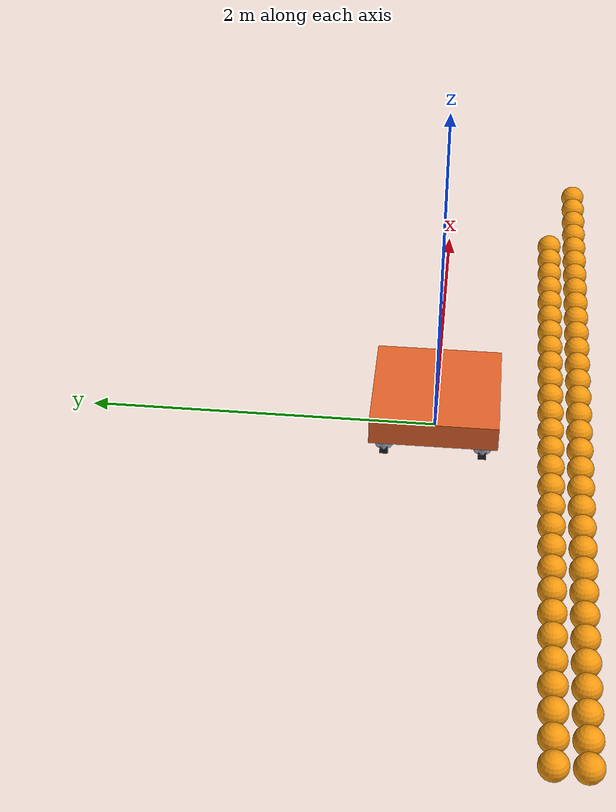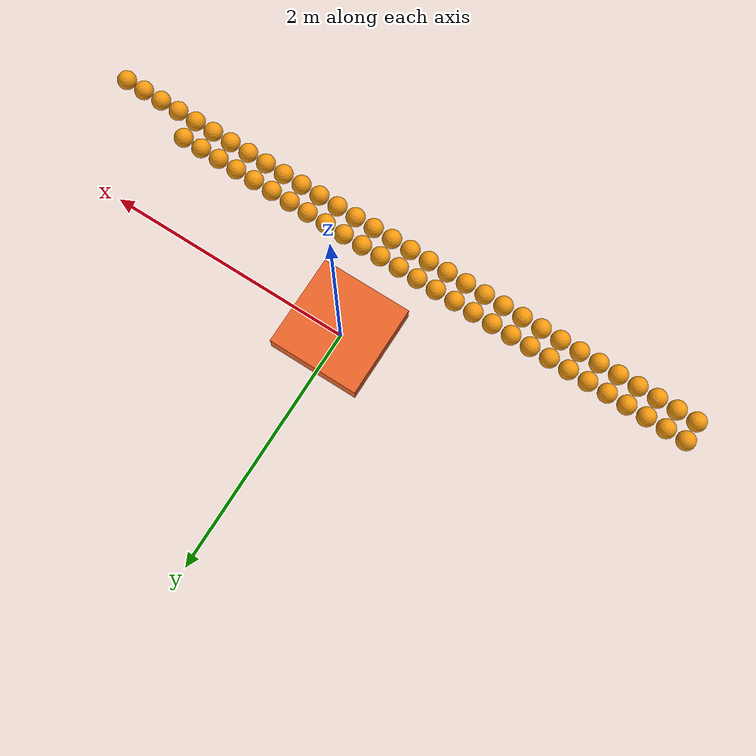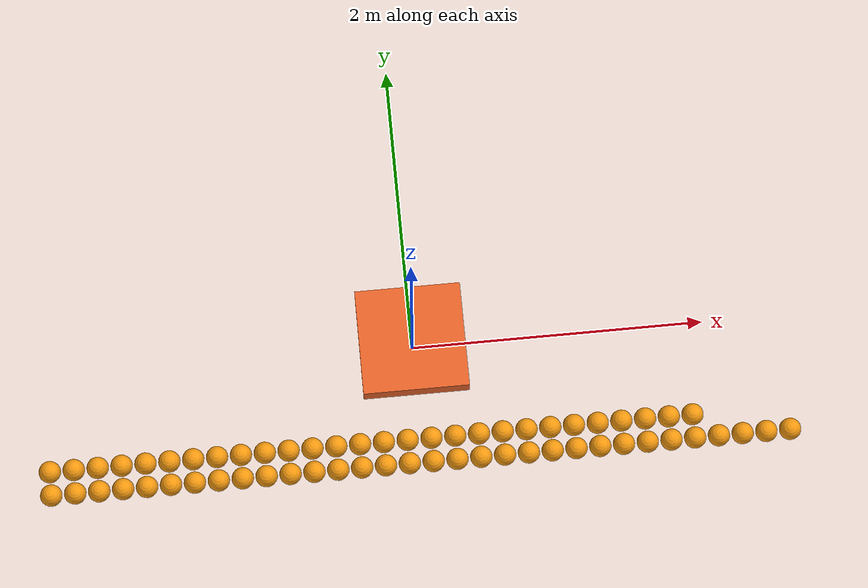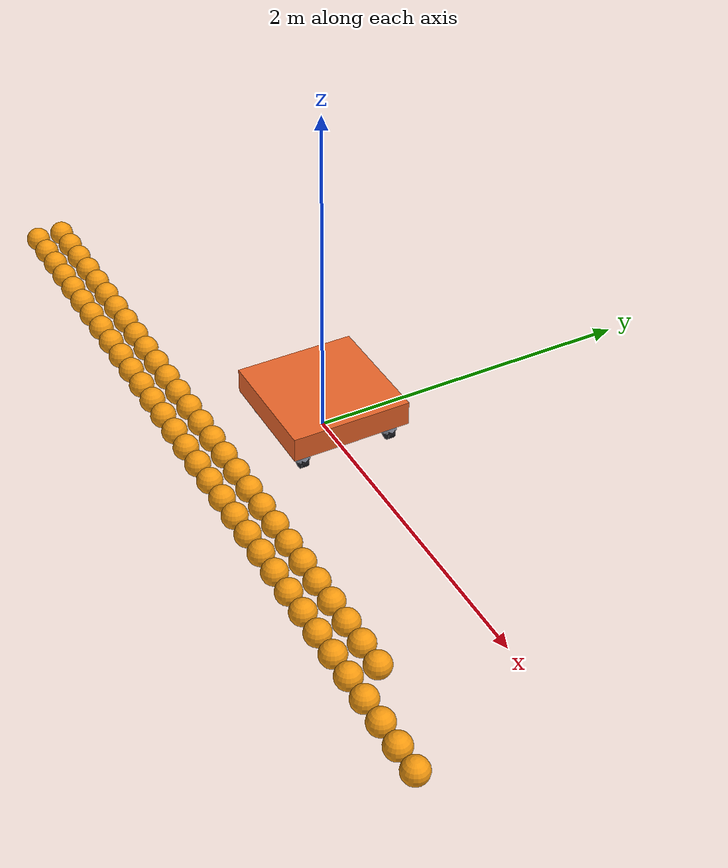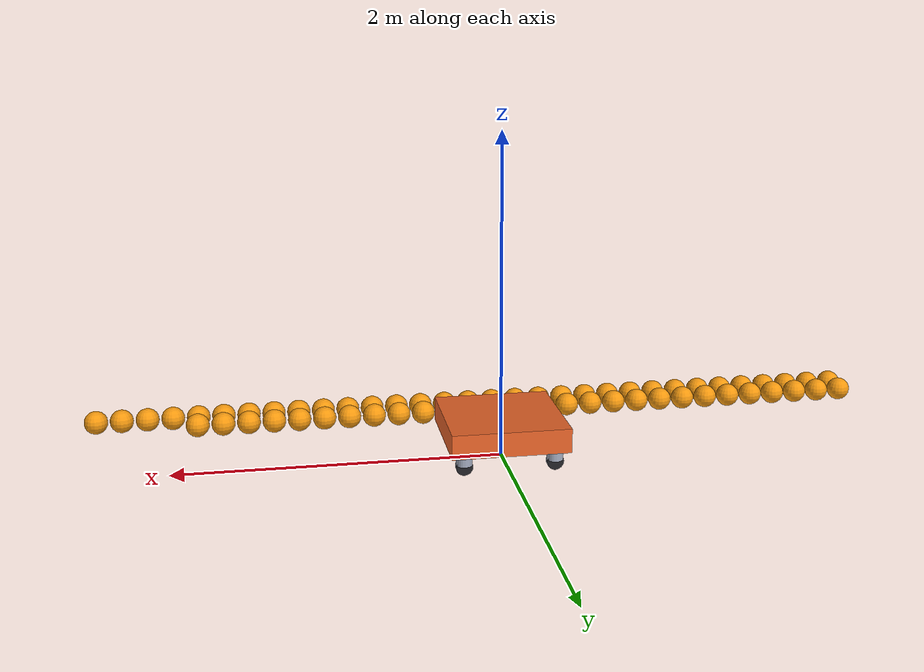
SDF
<sdf version="1.11">
 <world name="mars">
  <physics name="250hz" type="ignored">
   <max_step_size>0.004</max_step_size>
   <real_time_factor>0</real_time_factor>
  </physics>
  <plugin filename="gz-sim-physics-system" name="gz::sim::systems::Physics"/>
  <plugin filename="gz-sim-user-commands-system" name="gz::sim::systems::UserCommands"/>
  <plugin filename="gz-sim-scene-broadcaster-system" name="gz::sim::systems::SceneBroadcaster"/>
  <gravity>0 0 -9.8</gravity>
  <light type="directional" name="sun">
   <pose>0 0 10 0 0 0</pose>
   <diffuse>0.8 0.8 0.8 1</diffuse>
   <direction>-0.5 0.1 -0.9</direction>
  </light>
  <model name="ground_plane">
   <static>true</static>
   <link name="link">
    <collision name="collision">
     <geometry><plane><normal>0 0 1</normal></plane></geometry>
     <surface><friction><ode><mu>0.9</mu><mu2>0.9</mu2></ode></friction></surface>
    </collision>
   </link>
  </model>
  <model name="robot">
   <link name="chassis">
    <pose>0 0 0.2 0 0 0</pose>
    <inertial>
     <mass>45.0</mass>
     <inertia><ixx>2.0284</ixx><iyy>2.0284</iyy><izz>3.8880</izz><ixy>0</ixy><ixz>0</ixz><iyz>0</iyz></inertia>
    </inertial>
    <collision name="collision"><geometry><box><size>0.72 0.72 0.15</size></box></geometry></collision>
    <visual name="visual">
     <geometry><box><size>0.72 0.72 0.15</size></box></geometry>
     <material>
      <ambient>0.35 0.15 0.06 1</ambient>
      <diffuse>0.91 0.39 0.16 1</diffuse>
      <specular>0.3 0.3 0.3 1</specular>
     </material>
    </visual>
   </link>
   <link name="fl_steer">
    <pose>0.2757 0.2757 0.12 0 0 0</pose>
    <inertial>
     <mass>1.2</mass>
     <inertia>
      <ixx>0.015346</ixx>
      <iyy>0.015346</iyy>
      <izz>0.030091</izz>
      <ixy>0</ixy>
      <ixz>0</ixz>
      <iyz>0</iyz>
     </inertia>
    </inertial>
    <visual name="visual">
     <geometry><cylinder><radius>0.05</radius><length>0.12</length></cylinder></geometry>
     <material><ambient>0.25 0.26 0.3 1</ambient><diffuse>0.62 0.65 0.72 1</diffuse></material>
    </visual>
   </link>
   <link name="fl_wheel">
    <pose>0.2757 0.2757 0.0508 -1.5707963 0 0</pose>
    <inertial>
     <mass>0.8</mass>
     <inertia>
      <ixx>0.001122</ixx>
      <iyy>0.001122</iyy>
      <izz>0.002200</izz>
      <ixy>0</ixy>
      <ixz>0</ixz>
      <iyz>0</iyz>
     </inertia>
    </inertial>
    <collision name="collision">
     <geometry><cylinder><radius>0.0508</radius><length>0.045</length></cylinder></geometry>
     <surface><friction><ode><mu>1.1</mu><mu2>1.1</mu2></ode></friction></surface>
    </collision>
    <visual name="visual">
     <geometry><cylinder><radius>0.0508</radius><length>0.045</length></cylinder></geometry>
     <material><ambient>0.05 0.05 0.06 1</ambient><diffuse>0.13 0.13 0.15 1</diffuse></material>
    </visual>
   </link>
   <joint name="fl_steer_joint" type="revolute">
    <parent>chassis</parent>
    <child>fl_steer</child>
    <axis>
     <xyz>0 0 1</xyz>
     <dynamics><damping>1.5</damping></dynamics>
     <limit><lower>-1e16</lower><upper>1e16</upper></limit>
    </axis>
   </joint>
   <joint name="fl_drive_joint" type="revolute">
    <parent>fl_steer</parent>
    <child>fl_wheel</child>
    <axis>
     <xyz>0 0 1</xyz>
     <dynamics><damping>0.02</damping></dynamics>
     <limit><lower>-1e16</lower><upper>1e16</upper></limit>
    </axis>
   </joint>
   <link name="fr_steer">
    <pose>0.2757 -0.2757 0.12 0 0 0</pose>
    <inertial>
     <mass>1.2</mass>
     <inertia>
      <ixx>0.015346</ixx>
      <iyy>0.015346</iyy>
      <izz>0.030091</izz>
      <ixy>0</ixy>
      <ixz>0</ixz>
      <iyz>0</iyz>
     </inertia>
    </inertial>
    <visual name="visual">
     <geometry><cylinder><radius>0.05</radius><length>0.12</length></cylinder></geometry>
     <material><ambient>0.25 0.26 0.3 1</ambient><diffuse>0.62 0.65 0.72 1</diffuse></material>
    </visual>
   </link>
   <link name="fr_wheel">
    <pose>0.2757 -0.2757 0.0508 -1.5707963 0 0</pose>
    <inertial>
     <mass>0.8</mass>
     <inertia>
      <ixx>0.001122</ixx>
      <iyy>0.001122</iyy>
      <izz>0.002200</izz>
      <ixy>0</ixy>
      <ixz>0</ixz>
      <iyz>0</iyz>
     </inertia>
    </inertial>
    <collision name="collision">
     <geometry><cylinder><radius>0.0508</radius><length>0.045</length></cylinder></geometry>
     <surface><friction><ode><mu>1.1</mu><mu2>1.1</mu2></ode></friction></surface>
    </collision>
    <visual name="visual">
     <geometry><cylinder><radius>0.0508</radius><length>0.045</length></cylinder></geometry>
     <material><ambient>0.05 0.05 0.06 1</ambient><diffuse>0.13 0.13 0.15 1</diffuse></material>
    </visual>
   </link>
   <joint name="fr_steer_joint" type="revolute">
    <parent>chassis</parent>
    <child>fr_steer</child>
    <axis>
     <xyz>0 0 1</xyz>
     <dynamics><damping>1.5</damping></dynamics>
     <limit><lower>-1e16</lower><upper>1e16</upper></limit>
    </axis>
   </joint>
   <joint name="fr_drive_joint" type="revolute">
    <parent>fr_steer</parent>
    <child>fr_wheel</child>
    <axis>
     <xyz>0 0 1</xyz>
     <dynamics><damping>0.02</damping></dynamics>
     <limit><lower>-1e16</lower><upper>1e16</upper></limit>
    </axis>
   </joint>
   <link name="bl_steer">
    <pose>-0.2757 0.2757 0.12 0 0 0</pose>
    <inertial>
     <mass>1.2</mass>
     <inertia>
      <ixx>0.015346</ixx>
      <iyy>0.015346</iyy>
      <izz>0.030091</izz>
      <ixy>0</ixy>
      <ixz>0</ixz>
      <iyz>0</iyz>
     </inertia>
    </inertial>
    <visual name="visual">
     <geometry><cylinder><radius>0.05</radius><length>0.12</length></cylinder></geometry>
     <material><ambient>0.25 0.26 0.3 1</ambient><diffuse>0.62 0.65 0.72 1</diffuse></material>
    </visual>
   </link>
   <link name="bl_wheel">
    <pose>-0.2757 0.2757 0.0508 -1.5707963 0 0</pose>
    <inertial>
     <mass>0.8</mass>
     <inertia>
      <ixx>0.001122</ixx>
      <iyy>0.001122</iyy>
      <izz>0.002200</izz>
      <ixy>0</ixy>
      <ixz>0</ixz>
      <iyz>0</iyz>
     </inertia>
    </inertial>
    <collision name="collision">
     <geometry><cylinder><radius>0.0508</radius><length>0.045</length></cylinder></geometry>
     <surface><friction><ode><mu>1.1</mu><mu2>1.1</mu2></ode></friction></surface>
    </collision>
    <visual name="visual">
     <geometry><cylinder><radius>0.0508</radius><length>0.045</length></cylinder></geometry>
     <material><ambient>0.05 0.05 0.06 1</ambient><diffuse>0.13 0.13 0.15 1</diffuse></material>
    </visual>
   </link>
   <joint name="bl_steer_joint" type="revolute">
    <parent>chassis</parent>
    <child>bl_steer</child>
    <axis>
     <xyz>0 0 1</xyz>
     <dynamics><damping>1.5</damping></dynamics>
     <limit><lower>-1e16</lower><upper>1e16</upper></limit>
    </axis>
   </joint>
   <joint name="bl_drive_joint" type="revolute">
    <parent>bl_steer</parent>
    <child>bl_wheel</child>
    <axis>
     <xyz>0 0 1</xyz>
     <dynamics><damping>0.02</damping></dynamics>
     <limit><lower>-1e16</lower><upper>1e16</upper></limit>
    </axis>
   </joint>
   <link name="br_steer">
    <pose>-0.2757 -0.2757 0.12 0 0 0</pose>
    <inertial>
     <mass>1.2</mass>
     <inertia>
      <ixx>0.015346</ixx>
      <iyy>0.015346</iyy>
      <izz>0.030091</izz>
      <ixy>0</ixy>
      <ixz>0</ixz>
      <iyz>0</iyz>
     </inertia>
    </inertial>
    <visual name="visual">
     <geometry><cylinder><radius>0.05</radius><length>0.12</length></cylinder></geometry>
     <material><ambient>0.25 0.26 0.3 1</ambient><diffuse>0.62 0.65 0.72 1</diffuse></material>
    </visual>
   </link>
   <link name="br_wheel">
    <pose>-0.2757 -0.2757 0.0508 -1.5707963 0 0</pose>
    <inertial>
     <mass>0.8</mass>
     <inertia>
      <ixx>0.001122</ixx>
      <iyy>0.001122</iyy>
      <izz>0.002200</izz>
      <ixy>0</ixy>
      <ixz>0</ixz>
      <iyz>0</iyz>
     </inertia>
    </inertial>
    <collision name="collision">
     <geometry><cylinder><radius>0.0508</radius><length>0.045</length></cylinder></geometry>
     <surface><friction><ode><mu>1.1</mu><mu2>1.1</mu2></ode></friction></surface>
    </collision>
    <visual name="visual">
     <geometry><cylinder><radius>0.0508</radius><length>0.045</length></cylinder></geometry>
     <material><ambient>0.05 0.05 0.06 1</ambient><diffuse>0.13 0.13 0.15 1</diffuse></material>
    </visual>
   </link>
   <joint name="br_steer_joint" type="revolute">
    <parent>chassis</parent>
    <child>br_steer</child>
    <axis>
     <xyz>0 0 1</xyz>
     <dynamics><damping>1.5</damping></dynamics>
     <limit><lower>-1e16</lower><upper>1e16</upper></limit>
    </axis>
   </joint>
   <joint name="br_drive_joint" type="revolute">
    <parent>br_steer</parent>
    <child>br_wheel</child>
    <axis>
     <xyz>0 0 1</xyz>
     <dynamics><damping>0.02</damping></dynamics>
     <limit><lower>-1e16</lower><upper>1e16</upper></limit>
    </axis>
   </joint>
   <plugin filename="MarsLink" name="mars::MarsLink">
    <actuator joint="fl_drive_joint" motor="kraken_x60" gearRatio="5.2734375"/>
    <actuator joint="fl_steer_joint" motor="kraken_x60" gearRatio="26.09090909090909" control="position" kp="0.08" kd="0.012"/>
    <actuator joint="fr_drive_joint" motor="kraken_x60" gearRatio="5.2734375"/>
    <actuator joint="fr_steer_joint" motor="kraken_x60" gearRatio="26.09090909090909" control="position" kp="0.08" kd="0.012"/>
    <actuator joint="bl_drive_joint" motor="kraken_x60" gearRatio="5.2734375"/>
    <actuator joint="bl_steer_joint" motor="kraken_x60" gearRatio="26.09090909090909" control="position" kp="0.08" kd="0.012"/>
    <actuator joint="br_drive_joint" motor="kraken_x60" gearRatio="5.2734375"/>
    <actuator joint="br_steer_joint" motor="kraken_x60" gearRatio="26.09090909090909" control="position" kp="0.08" kd="0.012"/>
   </plugin>
  </model>
  <include><uri>model://fuel</uri><name>fuel_0</name><pose>-2.519 -0.819 0.075 0 0 0</pose></include>
  <include><uri>model://fuel</uri><name>fuel_1</name><pose>-2.357 -0.819 0.075 0 0 0</pose></include>
  <include><uri>model://fuel</uri><name>fuel_2</name><pose>-2.195 -0.819 0.075 0 0 0</pose></include>
  <include><uri>model://fuel</uri><name>fuel_3</name><pose>-2.033 -0.819 0.075 0 0 0</pose></include>
  <include><uri>model://fuel</uri><name>fuel_4</name><pose>-1.871 -0.819 0.075 0 0 0</pose></include>
  <include><uri>model://fuel</uri><name>fuel_5</name><pose>-1.709 -0.819 0.075 0 0 0</pose></include>
  <include><uri>model://fuel</uri><name>fuel_6</name><pose>-1.547 -0.819 0.075 0 0 0</pose></include>
  <include><uri>model://fuel</uri><name>fuel_7</name><pose>-1.385 -0.819 0.075 0 0 0</pose></include>
  <include><uri>model://fuel</uri><name>fuel_8</name><pose>-1.223 -0.819 0.075 0 0 0</pose></include>
  <include><uri>model://fuel</uri><name>fuel_9</name><pose>-1.061 -0.819 0.075 0 0 0</pose></include>
  <include><uri>model://fuel</uri><name>fuel_10</name><pose>-0.899 -0.819 0.075 0 0 0</pose></include>
  <include><uri>model://fuel</uri><name>fuel_11</name><pose>-0.737 -0.819 0.075 0 0 0</pose></include>
  <include><uri>model://fuel</uri><name>fuel_12</name><pose>-0.575 -0.819 0.075 0 0 0</pose></include>
  <include><uri>model://fuel</uri><name>fuel_13</name><pose>-0.413 -0.819 0.075 0 0 0</pose></include>
  <include><uri>model://fuel</uri><name>fuel_14</name><pose>-0.251 -0.819 0.075 0 0 0</pose></include>
  <include><uri>model://fuel</uri><name>fuel_15</name><pose>-0.089 -0.819 0.075 0 0 0</pose></include>
  <include><uri>model://fuel</uri><name>fuel_16</name><pose>0.073 -0.819 0.075 0 0 0</pose></include>
  <include><uri>model://fuel</uri><name>fuel_17</name><pose>0.235 -0.819 0.075 0 0 0</pose></include>
  <include><uri>model://fuel</uri><name>fuel_18</name><pose>0.397 -0.819 0.075 0 0 0</pose></include>
  <include><uri>model://fuel</uri><name>fuel_19</name><pose>0.559 -0.819 0.075 0 0 0</pose></include>
  <include><uri>model://fuel</uri><name>fuel_20</name><pose>0.721 -0.819 0.075 0 0 0</pose></include>
  <include><uri>model://fuel</uri><name>fuel_21</name><pose>0.883 -0.819 0.075 0 0 0</pose></include>
  <include><uri>model://fuel</uri><name>fuel_22</name><pose>1.045 -0.819 0.075 0 0 0</pose></include>
  <include><uri>model://fuel</uri><name>fuel_23</name><pose>1.207 -0.819 0.075 0 0 0</pose></include>
  <include><uri>model://fuel</uri><name>fuel_24</name><pose>1.369 -0.819 0.075 0 0 0</pose></include>
  <include><uri>model://fuel</uri><name>fuel_25</name><pose>1.531 -0.819 0.075 0 0 0</pose></include>
  <include><uri>model://fuel</uri><name>fuel_26</name><pose>1.693 -0.819 0.075 0 0 0</pose></include>
  <include><uri>model://fuel</uri><name>fuel_27</name><pose>1.855 -0.819 0.075 0 0 0</pose></include>
  <include><uri>model://fuel</uri><name>fuel_28</name><pose>2.017 -0.819 0.075 0 0 0</pose></include>
  <include><uri>model://fuel</uri><name>fuel_29</name><pose>2.179 -0.819 0.075 0 0 0</pose></include>
  <include><uri>model://fuel</uri><name>fuel_30</name><pose>2.341 -0.819 0.075 0 0 0</pose></include>
  <include><uri>model://fuel</uri><name>fuel_31</name><pose>2.503 -0.819 0.075 0 0 0</pose></include>
  <include><uri>model://fuel</uri><name>fuel_32</name><pose>-2.519 -0.657 0.075 0 0 0</pose></include>
  <include><uri>model://fuel</uri><name>fuel_33</name><pose>-2.357 -0.657 0.075 0 0 0</pose></include>
  <include><uri>model://fuel</uri><name>fuel_34</name><pose>-2.195 -0.657 0.075 0 0 0</pose></include>
  <include><uri>model://fuel</uri><name>fuel_35</name><pose>-2.033 -0.657 0.075 0 0 0</pose></include>
  <include><uri>model://fuel</uri><name>fuel_36</name><pose>-1.871 -0.657 0.075 0 0 0</pose></include>
  <include><uri>model://fuel</uri><name>fuel_37</name><pose>-1.709 -0.657 0.075 0 0 0</pose></include>
  <include><uri>model://fuel</uri><name>fuel_38</name><pose>-1.547 -0.657 0.075 0 0 0</pose></include>
  <include><uri>model://fuel</uri><name>fuel_39</name><pose>-1.385 -0.657 0.075 0 0 0</pose></include>
  <include><uri>model://fuel</uri><name>fuel_40</name><pose>-1.223 -0.657 0.075 0 0 0</pose></include>
  <include><uri>model://fuel</uri><name>fuel_41</name><pose>-1.061 -0.657 0.075 0 0 0</pose></include>
  <include><uri>model://fuel</uri><name>fuel_42</name><pose>-0.899 -0.657 0.075 0 0 0</pose></include>
  <include><uri>model://fuel</uri><name>fuel_43</name><pose>-0.737 -0.657 0.075 0 0 0</pose></include>
  <include><uri>model://fuel</uri><name>fuel_44</name><pose>-0.575 -0.657 0.075 0 0 0</pose></include>
  <include><uri>model://fuel</uri><name>fuel_45</name><pose>-0.413 -0.657 0.075 0 0 0</pose></include>
  <include><uri>model://fuel</uri><name>fuel_46</name><pose>-0.251 -0.657 0.075 0 0 0</pose></include>
  <include><uri>model://fuel</uri><name>fuel_47</name><pose>-0.089 -0.657 0.075 0 0 0</pose></include>
  <include><uri>model://fuel</uri><name>fuel_48</name><pose>0.073 -0.657 0.075 0 0 0</pose></include>
  <include><uri>model://fuel</uri><name>fuel_49</name><pose>0.235 -0.657 0.075 0 0 0</pose></include>
  <include><uri>model://fuel</uri><name>fuel_50</name><pose>0.397 -0.657 0.075 0 0 0</pose></include>
  <include><uri>model://fuel</uri><name>fuel_51</name><pose>0.559 -0.657 0.075 0 0 0</pose></include>
  <include><uri>model://fuel</uri><name>fuel_52</name><pose>0.721 -0.657 0.075 0 0 0</pose></include>
  <include><uri>model://fuel</uri><name>fuel_53</name><pose>0.883 -0.657 0.075 0 0 0</pose></include>
  <include><uri>model://fuel</uri><name>fuel_54</name><pose>1.045 -0.657 0.075 0 0 0</pose></include>
  <include><uri>model://fuel</uri><name>fuel_55</name><pose>1.207 -0.657 0.075 0 0 0</pose></include>
  <include><uri>model://fuel</uri><name>fuel_56</name><pose>1.369 -0.657 0.075 0 0 0</pose></include>
  <include><uri>model://fuel</uri><name>fuel_57</name><pose>1.531 -0.657 0.075 0 0 0</pose></include>
  <include><uri>model://fuel</uri><name>fuel_58</name><pose>1.693 -0.657 0.075 0 0 0</pose></include>
  <include><uri>model://fuel</uri><name>fuel_59</name><pose>1.855 -0.657 0.075 0 0 0</pose></include>
 </world>
</sdf>

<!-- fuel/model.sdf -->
<sdf version="1.11">
  <model name="fuel">
    <link name="link">

      <inertial>
        <mass>0.215</mass>
        <inertia>
          <ixx>4.8375e-4</ixx><ixy>0</ixy><ixz>0</ixz>
          <iyy>4.8375e-4</iyy><iyz>0</iyz>
          <izz>4.8375e-4</izz>
        </inertia>
      </inertial>

      <collision name="collision">
        <geometry><sphere><radius>0.075</radius></sphere></geometry>
        <surface>
          <friction>
            <ode>
              <mu>0.85</mu>
              <mu2>0.85</mu2>
            </ode>
          </friction>
        </surface>
      </collision>

      <visual name="visual">
        <geometry><sphere><radius>0.075</radius></sphere></geometry>
        <material>
          <ambient>0.38 0.24 0.02 1</ambient>
          <diffuse>0.956 0.597 0.056 1</diffuse>
          <specular>0.05 0.05 0.05 1</specular>
        </material>
      </visual>

    </link>
  </model>
</sdf>
